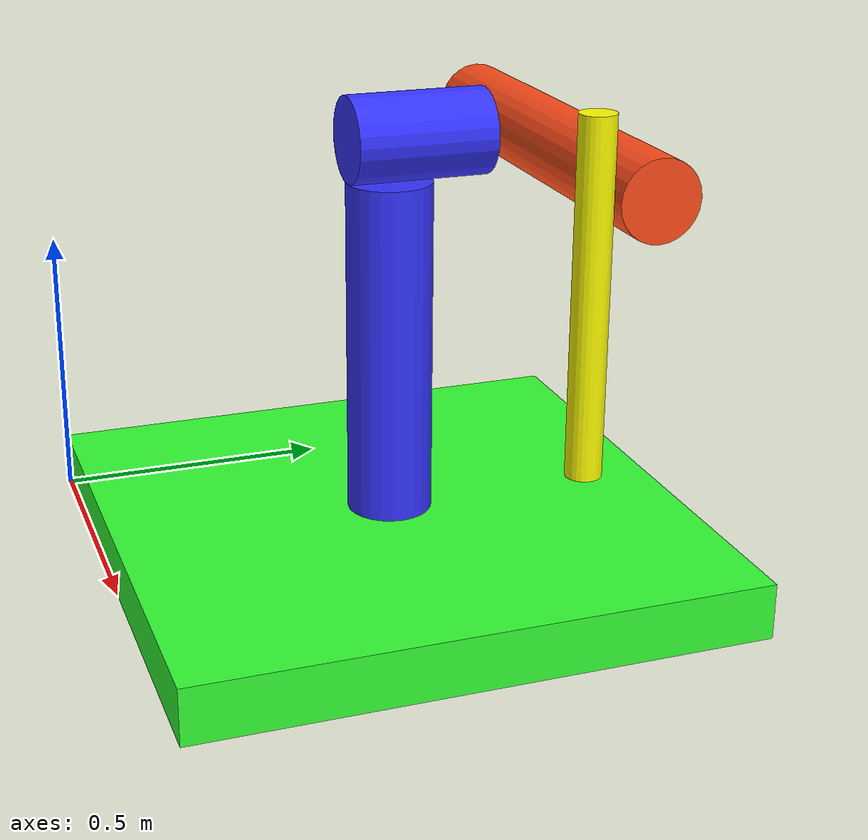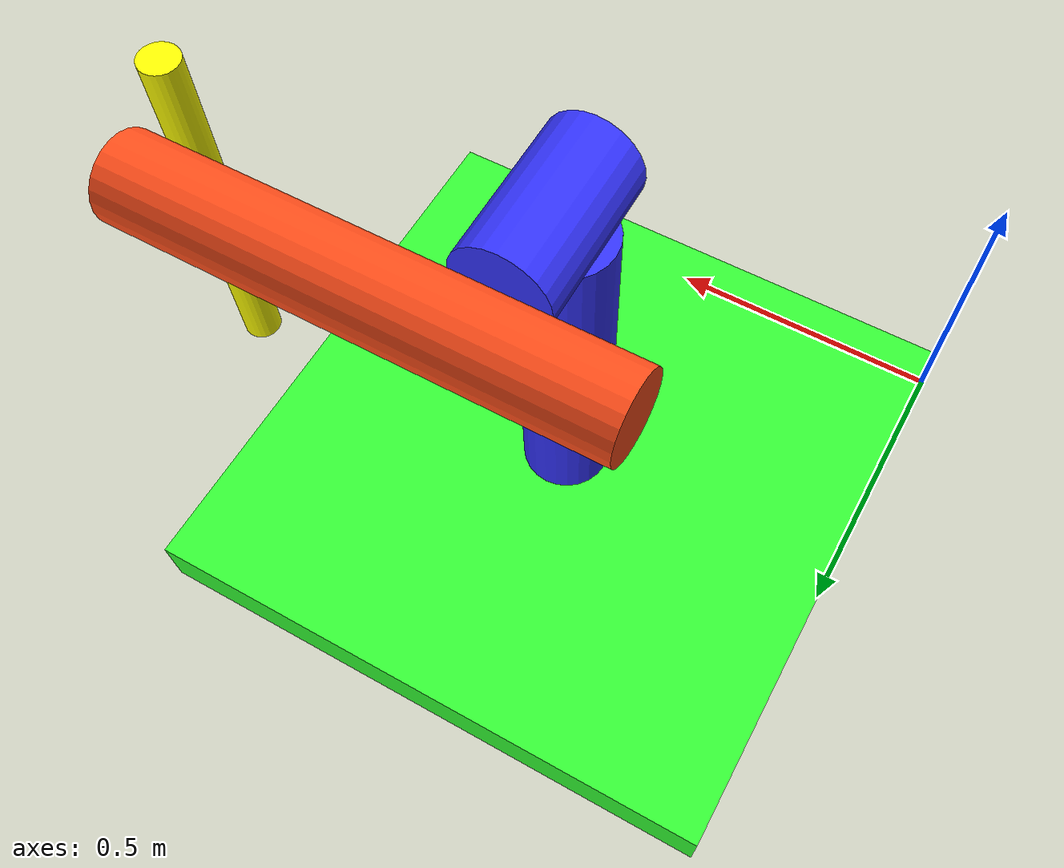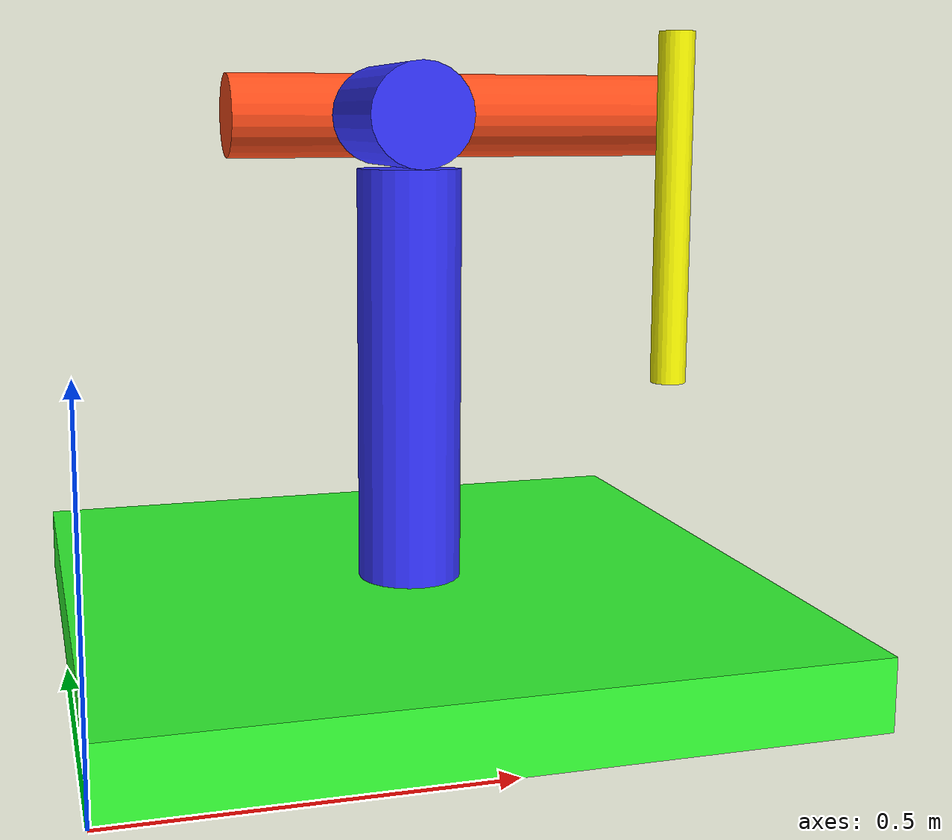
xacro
<?xml version="1.0"?>
<robot xmlns:xacro="http://www.ros.org/wiki/xacro"  name="robot">

    <xacro:include filename="inertial_macros.xacro" />

    <!-- This first link called "world" is empty -->
    <link name="world"></link>

    <joint name="base_joint" type="fixed">
        <origin xyz="0.5 0.5 0" rpy="0 0 0"/>
        <parent link="world"/>
        <child link="base_link"/>
    </joint>

    <link name="base_link">
        <visual>
            <origin xyz="0 0 0.05" rpy="0 0 0"/>
            <geometry>
                <box size="1 1 0.1" />
            </geometry>
            <material name="green">
                <color rgba="0.2 1 0.2 1"/>
            </material>
        </visual>
        <collision>
            <origin xyz="0 0 0.05" rpy="0 0 0"/>
            <geometry>
                <box size="1 1 0.1" />
            </geometry>
        </collision>
        <inertial>
            <origin xyz="0 0 0.05" rpy="0 0 0"/>
            <mass value="12" />
            <inertia ixx="2.26" ixy="0.0" ixz="0.0" iyy="6.26" iyz="0.0" izz="8.5" />
        </inertial>
    </link>

    <joint name="joint_1" type="revolute">
        <origin xyz="0 0 0.1" rpy="0 0 0"/>
        <parent link="base_link"/>
        <child link="link_1"/>
        <axis xyz="0 0 1"/>
        <limit lower="0" upper="5.585" velocity="1" effort="100"/>
        <dynamics damping="1.0" friction="1.0"/>
    </joint>

    <xacro:property name="link_1_length" value="${0.59817}" />
    <xacro:property name="link_1_radius" value="0.07493" />
    <link name="link_1">
    <visual>
        <origin xyz="0 0 ${link_1_length/2}" rpy="0 0 0"/>
        <geometry>
            <cylinder length="${link_1_length}" radius="${link_1_radius}" />
        </geometry>
        <material name="blue" />
    </visual>
    <collision>
        <origin xyz="0 0 ${link_1_length/2}" rpy="0 0 0"/>
        <geometry>
            <cylinder length="${link_1_length}" radius="${link_1_radius}" />
        </geometry>
    </collision>
    <xacro:inertial_cylinder mass="0.5" length="${link_1_length}" radius="${link_1_radius}">
        <origin xyz="0 0 ${link_1_length/2}" rpy="0 0 0"/>
    </xacro:inertial_cylinder>
    </link>

    <!-- Add properties for shoulder -->
    <xacro:property name="shoulder_length" value="${0.1686 + link_1_radius}" />
    <xacro:property name="shoulder_radius" value="${link_1_radius}" />

    <joint name="joint_1_shoulder" type="fixed">
        <origin xyz="0 0 ${link_1_length + shoulder_radius}" rpy="0 0 0"/>
        <parent link="link_1"/>
        <child link="shoulder"/>
    </joint>

    <link name="shoulder">
        <visual>
            <origin xyz="0 ${shoulder_length/2 - shoulder_radius} 0" rpy="${pi/2} 0 0"/>
            <geometry>
                <cylinder length="${shoulder_length}" radius="${shoulder_radius}" />
            </geometry>
            <material name="blue" />
        </visual>
        <collision>
            <origin xyz="0 ${shoulder_length/2 - shoulder_radius} 0" rpy="0 0 ${pi/2}"/>
            <geometry>
                <cylinder length="${shoulder_length}" radius="${shoulder_radius}" />
            </geometry>
        </collision>
        <xacro:inertial_cylinder mass="0.5" length="${shoulder_length}" radius="${shoulder_radius}">
            <origin xyz="0 ${shoulder_length/2 - shoulder_radius} 0" rpy="0 0 ${pi/2}"/>
        </xacro:inertial_cylinder>
    </link>

    <xacro:property name="link_2_length" value="${0.735}" />
    <xacro:property name="link_2_radius" value="0.065278" />

    <joint name="joint_2" type="revolute">
        <origin xyz="0 ${shoulder_length} 0" rpy="0 0 0"/>
        <parent link="shoulder"/>
        <child link="link_2"/>
        <axis xyz="0 -1 0"/>
        <limit lower="-1" upper="3.363" velocity="1" effort="100"/>
        <dynamics damping="1.0" friction="1.0"/>
    </joint>

    <link name="link_2">
        <visual>
            <origin xyz="${link_2_length/2 - 0.226} 0 0" rpy="0 ${pi/2} 0"/>
            <geometry>
                <cylinder length="${link_2_length}" radius="${link_2_radius}" />
            </geometry>
            <material name="orange" />
        </visual>
        <collision>
            <origin xyz="${link_2_length/2 - 0.226} 0 0" rpy="0 ${pi/2} 0"/>
            <geometry>
                <cylinder length="${link_2_length}" radius="${link_2_radius}" />
            </geometry>
        </collision>
        <xacro:inertial_cylinder mass="1.0" length="${link_2_length}" radius="${link_2_radius}">
            <origin xyz="${link_2_length/2 - 0.226} 0 0" rpy="0 ${pi/2} 0"/>
        </xacro:inertial_cylinder>
    </link>

    <xacro:property name="link_3_length" value="${0.4318 + 0.13208}" />
    <xacro:property name="link_3_radius" value="0.028702" />

    <joint name="joint_3" type="revolute">
        <origin xyz="${link_2_length - 0.226 - link_3_radius} -${link_2_radius + link_3_radius} 0" rpy="0 0 0"/>
        <parent link="link_2"/>
        <child link="link_3"/>
        <axis xyz="0 -1 0"/>
        <limit lower="-0.712" upper="4" velocity="1" effort="100"/>
        <dynamics damping="1.0" friction="1.0"/>
    </joint>

    <link name="link_3">
        <visual>
            <origin xyz="0 0 ${link_3_length/2 - 0.4318}" rpy="0 0 0"/>
            <geometry>
                <cylinder length="${link_3_length}" radius="${link_3_radius}" />
            </geometry>
            <material name="yellow" />
        </visual>
        <collision>
            <origin xyz="0 0 ${link_3_length/2 - 0.4318}" rpy="0 0 0"/>
            <geometry>
                <cylinder length="${link_3_length}" radius="${link_3_radius}" />
            </geometry>
        </collision>
        <xacro:inertial_cylinder mass="0.5" length="${link_3_length}" radius="${link_3_radius}">
            <origin xyz="0 0 ${link_3_length/2 - 0.4318}" rpy="0 0 0"/>
        </xacro:inertial_cylinder>
    </link>

</robot>

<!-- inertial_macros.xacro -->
<robot xmlns:xacro="http://www.ros.org/wiki/xacro" >

    <!-- This file is not a robot in and of itself, it just contains some useful tags that could be included in any robot -->

    <!-- Specify some colours -->

    <material name="white">
        <color rgba="1 1 1 1"/>
    </material>

    <material name="orange">
        <color rgba="1 0.3 0.1 1"/>
    </material>

    <material name="blue">
        <color rgba="0.2 0.2 1 1"/>
    </material>

    <material name="yellow">
        <color rgba="1 1 0 1"/>
    </material>

    <material name="green">
        <color rgba="0.2 1 0.2 1"/>
    </material>

    <material name="purple">
        <color rgba="1 0 1 1"/>
    </material>

    <!-- Specify some standard inertial calculations https://en.wikipedia.org/wiki/List_of_moments_of_inertia -->
    <!-- These make use of xacro's mathematical functionality -->

    <xacro:macro name="inertial_sphere" params="mass radius *origin">
        <inertial>
            <xacro:insert_block name="origin"/>
            <mass value="${mass}" />
            <inertia ixx="${(2/5) * mass * (radius*radius)}" ixy="0.0" ixz="0.0"
                    iyy="${(2/5) * mass * (radius*radius)}" iyz="0.0"
                    izz="${(2/5) * mass * (radius*radius)}" />
        </inertial>
    </xacro:macro>

    <xacro:macro name="inertial_box" params="mass x y z *origin">
        <inertial>
            <xacro:insert_block name="origin"/>
            <mass value="${mass}" />
            <inertia ixx="${(1/12) * mass * (y*y+z*z)}" ixy="0.0" ixz="0.0"
                    iyy="${(1/12) * mass * (x*x+z*z)}" iyz="0.0"
                    izz="${(1/12) * mass * (x*x+y*y)}" />
        </inertial>
    </xacro:macro>

    <xacro:macro name="inertial_cylinder" params="mass length radius *origin">
        <inertial>
            <xacro:insert_block name="origin"/>
            <mass value="${mass}" />
            <inertia ixx="${(1/12) * mass * (3*radius*radius + length*length)}" ixy="0.0" ixz="0.0"
                    iyy="${(1/12) * mass * (3*radius*radius + length*length)}" iyz="0.0"
                    izz="${(1/2) * mass * (radius*radius)}" />
        </inertial>
    </xacro:macro>

    <!-- PUMA 560 Specific Inertia Macros based on Stanford paper -->

    <!-- Link 1 (Shoulder): Only rotates around Z-axis -->
    <!-- Original: m1≈0, Ixx=0.001, Iyy=0.001, Izz=1.49 (Im1=1.14 + I1zz=0.35) -->
    <!-- Minimum valid: Ixx = Iyy = Izz/2 = 0.745 -->
    <xacro:macro name="inertial_link1" params="*origin">
        <inertial>
            <xacro:insert_block name="origin"/>
            <!-- Small mass (original was ~0, but Gazebo needs non-zero) -->
            <mass value="0.01" />
            <!-- Izz preserved exactly, Ixx/Iyy set to minimum valid (Izz/2) -->
            <inertia ixx="0.745" ixy="0.0" ixz="0.0"
                    iyy="0.745" iyz="0.0"
                    izz="1.49" />
        </inertial>
    </xacro:macro>

    <!-- Link 2 (Upper Arm): m2=17.4 kg -->
    <!-- Original: Ixx=0.130, Iyy=0.524, Izz=5.249 (I2zz=0.539 + Im2=4.71) -->
    <!-- CoG w.r.t. link frame: [0.068, 0.006, -0.016] meters -->
    <!-- Minimum valid: Ixx = Iyy = Izz/2 = 2.6245 -->
    <xacro:macro name="inertial_link2" params="*origin">
        <inertial>
            <xacro:insert_block name="origin"/>
            <mass value="17.4" />
            <!-- Izz preserved exactly (critical for joint 2 dynamics) -->
            <!-- Ixx/Iyy set to minimum valid values -->
            <inertia ixx="2.6245" ixy="0.0" ixz="0.0"
                    iyy="2.6245" iyz="0.0"
                    izz="5.249" />
        </inertial>
    </xacro:macro>

    <!-- Link 3 (Forearm): m3=4.8 kg -->
    <!-- Original: Ixx=0.066, Iyy=0.125, Izz=0.916 (I3zz=0.086 + Im3=0.83) -->
    <!-- CoG w.r.t. link frame: [0.000, -0.143, 0.014] meters -->
    <!-- Minimum valid: Ixx = Iyy = Izz/2 = 0.458 -->
    <xacro:macro name="inertial_link3" params="mass *origin">
        <inertial>
            <xacro:insert_block name="origin"/>
            <mass value="${mass}" />
            <!-- Izz preserved exactly (critical for joint 3 dynamics) -->
            <!-- Ixx/Iyy set to minimum valid values -->
            <inertia ixx="0.458" ixy="0.0" ixz="0.0"
                    iyy="0.458" iyz="0.0"
                    izz="0.916" />
        </inertial>
    </xacro:macro>

</robot>
